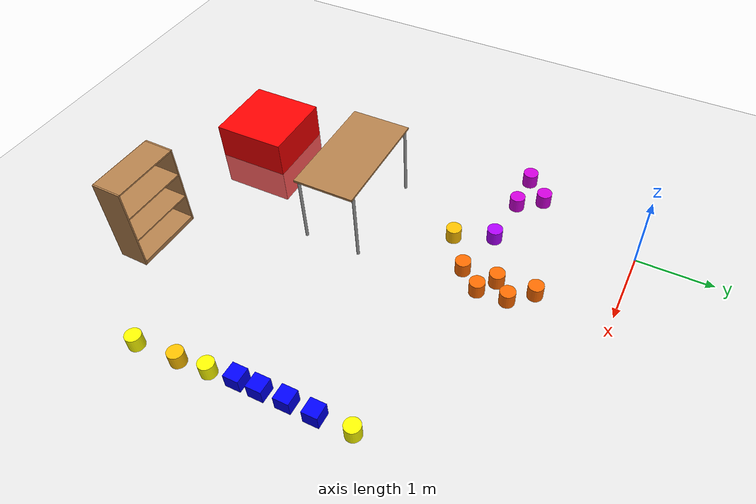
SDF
<sdf version="1.6">
 <world name="default">
  <model name="ground_plane">
   <static>1</static>
   <link name="link">
    <collision name="collision">
     <geometry><plane><normal>0 0 1</normal><size>100 100</size></plane></geometry>
     <surface>
      <contact><collide_bitmask>65535</collide_bitmask></contact>
      <friction><ode><mu>100</mu><mu2>50</mu2></ode></friction>
     </surface>
    </collision>
    <visual name="visual">
     <cast_shadows>0</cast_shadows>
     <geometry><plane><normal>0 0 1</normal><size>100 100</size></plane></geometry>
     <material>
      <script><uri>file://media/materials/scripts/gazebo.material</uri><name>Gazebo/Grey</name></script>
     </material>
    </visual>
   </link>
  </model>
  <model name="bookshelf_4">
   <static>1</static>
   <link name="link">
    <inertial><mass>1</mass></inertial>
    <collision name="back">
     <pose>0 0.005 0.6 0 -0 0</pose>
     <geometry><box><size>0.9 0.01 1.2</size></box></geometry>
    </collision>
    <visual name="visual1">
     <pose>0 0.005 0.6 0 -0 0</pose>
     <geometry><box><size>0.9 0.01 1.2</size></box></geometry>
     <material>
      <script><uri>file://media/materials/scripts/gazebo.material</uri><name>Gazebo/Wood</name></script>
     </material>
    </visual>
    <collision name="left_side">
     <pose>0.45 -0.195 0.6 0 -0 0</pose>
     <geometry><box><size>0.02 0.4 1.2</size></box></geometry>
    </collision>
    <visual name="visual2">
     <pose>0.45 -0.195 0.6 0 -0 0</pose>
     <geometry><box><size>0.02 0.4 1.2</size></box></geometry>
     <material>
      <script><uri>file://media/materials/scripts/gazebo.material</uri><name>Gazebo/Wood</name></script>
     </material>
    </visual>
    <collision name="right_side">
     <pose>-0.45 -0.195 0.6 0 -0 0</pose>
     <geometry><box><size>0.02 0.4 1.2</size></box></geometry>
    </collision>
    <visual name="visual3">
     <pose>-0.45 -0.195 0.6 0 -0 0</pose>
     <geometry><box><size>0.02 0.4 1.2</size></box></geometry>
     <material>
      <script><uri>file://media/materials/scripts/gazebo.material</uri><name>Gazebo/Wood</name></script>
     </material>
    </visual>
    <collision name="bottom">
     <pose>0 -0.195 0.03 0 -0 0</pose>
     <geometry><box><size>0.88 0.4 0.06</size></box></geometry>
    </collision>
    <visual name="visual4">
     <pose>0 -0.195 0.03 0 -0 0</pose>
     <geometry><box><size>0.88 0.4 0.06</size></box></geometry>
     <material>
      <script><uri>file://media/materials/scripts/gazebo.material</uri><name>Gazebo/Wood</name></script>
     </material>
    </visual>
    <collision name="top">
     <pose>0 -0.195 1.19 0 -0 0</pose>
     <geometry><box><size>0.88 0.4 0.02</size></box></geometry>
    </collision>
    <visual name="visual5">
     <pose>0 -0.195 1.19 0 -0 0</pose>
     <geometry><box><size>0.88 0.4 0.02</size></box></geometry>
     <material>
      <script><uri>file://media/materials/scripts/gazebo.material</uri><name>Gazebo/Wood</name></script>
     </material>
    </visual>
    <collision name="low_shelf">
     <pose>0 -0.195 0.43 0 -0 0</pose>
     <geometry><box><size>0.88 0.4 0.02</size></box></geometry>
    </collision>
    <visual name="visual6">
     <pose>0 -0.195 0.43 0 -0 0</pose>
     <geometry><box><size>0.88 0.4 0.02</size></box></geometry>
     <material>
      <script><uri>file://media/materials/scripts/gazebo.material</uri><name>Gazebo/Wood</name></script>
     </material>
    </visual>
    <collision name="high_shelf">
     <pose>0 -0.195 0.8 0 -0 0</pose>
     <geometry><box><size>0.88 0.4 0.02</size></box></geometry>
    </collision>
    <visual name="visual7">
     <pose>0 -0.195 0.8 0 -0 0</pose>
     <geometry><box><size>0.88 0.4 0.02</size></box></geometry>
     <material>
      <script><uri>file://media/materials/scripts/gazebo.material</uri><name>Gazebo/Wood</name></script>
     </material>
    </visual>
   </link>
   <pose>2.28502 -5.89967 -0 0 -0 3.11447</pose>
  </model>
  <model name="red_box_1">
   <link name="link_0">
    <inertial>
     <mass>1</mass>
     <inertia>
      <ixx>0.166667</ixx>
      <ixy>0</ixy>
      <ixz>0</ixz>
      <iyy>0.166667</iyy>
      <iyz>0</iyz>
      <izz>0.166667</izz>
     </inertia>
    </inertial>
    <visual name="visual">
     <geometry><box><size>1 1 1</size></box></geometry>
     <material>
      <lighting>1</lighting>
      <script><uri>file://media/materials/scripts/gazebo.material</uri><name>Gazebo/Grey</name></script>
      <shader type="vertex"><normal_map>__default__</normal_map></shader>
      <ambient>1 0 0 1</ambient>
      <diffuse>1 0 0 1</diffuse>
      <specular>1 0 0 1</specular>
      <emissive>0 0 0 1</emissive>
     </material>
    </visual>
    <collision name="collision">
     <geometry><box><size>1 1 1</size></box></geometry>
     <surface>
      <friction>
       <ode><mu>1</mu><mu2>1</mu2><fdir1>0 0 0</fdir1><slip1>0</slip1><slip2>0</slip2></ode>
       <torsional>
        <coefficient>1</coefficient>
        <patch_radius>0</patch_radius>
        <surface_radius>0</surface_radius>
        <use_patch_radius>1</use_patch_radius>
        <ode><slip>0</slip></ode>
       </torsional>
      </friction>
      <bounce><restitution_coefficient>0</restitution_coefficient><threshold>1e+06</threshold></bounce>
      <contact>
       <collide_without_contact>0</collide_without_contact>
       <collide_without_contact_bitmask>1</collide_without_contact_bitmask>
       <collide_bitmask>1</collide_bitmask>
       <ode>
        <soft_cfm>0</soft_cfm>
        <soft_erp>0.2</soft_erp>
        <kp>1e+13</kp>
        <kd>1</kd>
        <max_vel>0.01</max_vel>
        <min_depth>0</min_depth>
       </ode>
       <bullet>
        <split_impulse>1</split_impulse>
        <split_impulse_penetration_threshold>-0.01</split_impulse_penetration_threshold>
        <soft_cfm>0</soft_cfm>
        <soft_erp>0.2</soft_erp>
        <kp>1e+13</kp>
        <kd>1</kd>
       </bullet>
      </contact>
     </surface>
    </collision>
   </link>
   <static>1</static>
   <pose>0.07589 -5.40171 0 0 -0 0</pose>
  </model>
  <model name="cylinder_v_4">
   <link name="link_0">
    <pose>0 0 0.1 0 -0 0</pose>
    <inertial>
     <mass>1</mass>
     <inertia><ixx>0.145833</ixx><ixy>0</ixy><ixz>0</ixz><iyy>0.145833</iyy><iyz>0</iyz><izz>0.125</izz></inertia>
    </inertial>
    <visual name="visual">
     <geometry><cylinder><radius>0.1</radius><length>0.2</length></cylinder></geometry>
     <material>
      <lighting>1</lighting>
      <script><uri>file://media/materials/scripts/gazebo.material</uri><name>Gazebo/Grey</name></script>
      <ambient>0.682 0 1 1</ambient>
      <diffuse>0.682 0 1 1</diffuse>
      <specular>0 0 0 1</specular>
      <emissive>0 0 0 1</emissive>
      <shader type="vertex"><normal_map>__default__</normal_map></shader>
     </material>
    </visual>
    <collision name="collision">
     <geometry><cylinder><radius>0.1</radius><length>0.2</length></cylinder></geometry>
     <surface>
      <friction>
       <ode><mu>1</mu><mu2>1</mu2><fdir1>0 0 0</fdir1><slip1>0</slip1><slip2>0</slip2></ode>
       <torsional>
        <coefficient>1</coefficient>
        <patch_radius>0</patch_radius>
        <surface_radius>0</surface_radius>
        <use_patch_radius>1</use_patch_radius>
        <ode><slip>0</slip></ode>
       </torsional>
      </friction>
      <bounce><restitution_coefficient>0</restitution_coefficient><threshold>1e+06</threshold></bounce>
      <contact>
       <collide_without_contact>0</collide_without_contact>
       <collide_without_contact_bitmask>1</collide_without_contact_bitmask>
       <collide_bitmask>1</collide_bitmask>
       <ode>
        <soft_cfm>0</soft_cfm>
        <soft_erp>0.2</soft_erp>
        <kp>1e+13</kp>
        <kd>1</kd>
        <max_vel>0.01</max_vel>
        <min_depth>0</min_depth>
       </ode>
       <bullet>
        <split_impulse>1</split_impulse>
        <split_impulse_penetration_threshold>-0.01</split_impulse_penetration_threshold>
        <soft_cfm>0</soft_cfm>
        <soft_erp>0.2</soft_erp>
        <kp>1e+13</kp>
        <kd>1</kd>
       </bullet>
      </contact>
     </surface>
    </collision>
   </link>
   <static>1</static>
   <pose>0.441507 -1.73915 0 0 -0 0</pose>
  </model>
  <model name="cylinder_rv_0">
   <link name="link_0">
    <pose>0 0 0.1 0 -0 0</pose>
    <inertial>
     <mass>1</mass>
     <inertia><ixx>0.145833</ixx><ixy>0</ixy><ixz>0</ixz><iyy>0.145833</iyy><iyz>0</iyz><izz>0.125</izz></inertia>
    </inertial>
    <visual name="visual">
     <geometry><cylinder><radius>0.1</radius><length>0.2</length></cylinder></geometry>
     <material>
      <lighting>1</lighting>
      <script><uri>file://media/materials/scripts/gazebo.material</uri><name>Gazebo/Grey</name></script>
      <ambient>0.816 0 0.855 1</ambient>
      <diffuse>0.816 0 0.855 1</diffuse>
      <specular>0 0 0 1</specular>
      <emissive>0 0 0 1</emissive>
      <shader type="vertex"><normal_map>__default__</normal_map></shader>
     </material>
    </visual>
    <collision name="collision">
     <geometry><cylinder><radius>0.1</radius><length>0.2</length></cylinder></geometry>
     <surface>
      <friction>
       <ode><mu>1</mu><mu2>1</mu2><fdir1>0 0 0</fdir1><slip1>0</slip1><slip2>0</slip2></ode>
       <torsional>
        <coefficient>1</coefficient>
        <patch_radius>0</patch_radius>
        <surface_radius>0</surface_radius>
        <use_patch_radius>1</use_patch_radius>
        <ode><slip>0</slip></ode>
       </torsional>
      </friction>
      <bounce><restitution_coefficient>0</restitution_coefficient><threshold>1e+06</threshold></bounce>
      <contact>
       <collide_without_contact>0</collide_without_contact>
       <collide_without_contact_bitmask>1</collide_without_contact_bitmask>
       <collide_bitmask>1</collide_bitmask>
       <ode>
        <soft_cfm>0</soft_cfm>
        <soft_erp>0.2</soft_erp>
        <kp>1e+13</kp>
        <kd>1</kd>
        <max_vel>0.01</max_vel>
        <min_depth>0</min_depth>
       </ode>
       <bullet>
        <split_impulse>1</split_impulse>
        <split_impulse_penetration_threshold>-0.01</split_impulse_penetration_threshold>
        <soft_cfm>0</soft_cfm>
        <soft_erp>0.2</soft_erp>
        <kp>1e+13</kp>
        <kd>1</kd>
       </bullet>
      </contact>
     </surface>
    </collision>
   </link>
   <static>1</static>
   <pose>-0.768121 -1.69082 0 0 -0 0</pose>
  </model>
  <model name="cylinder_rv_1">
   <link name="link_0">
    <pose>0 0 0.1 0 -0 0</pose>
    <inertial>
     <mass>1</mass>
     <inertia><ixx>0.145833</ixx><ixy>0</ixy><ixz>0</ixz><iyy>0.145833</iyy><iyz>0</iyz><izz>0.125</izz></inertia>
    </inertial>
    <visual name="visual">
     <geometry><cylinder><radius>0.1</radius><length>0.2</length></cylinder></geometry>
     <material>
      <lighting>1</lighting>
      <script><uri>file://media/materials/scripts/gazebo.material</uri><name>Gazebo/Grey</name></script>
      <ambient>0.816 0 0.855 1</ambient>
      <diffuse>0.816 0 0.855 1</diffuse>
      <specular>0 0 0 1</specular>
      <emissive>0 0 0 1</emissive>
      <shader type="vertex"><normal_map>__default__</normal_map></shader>
     </material>
    </visual>
    <collision name="collision">
     <geometry><cylinder><radius>0.1</radius><length>0.2</length></cylinder></geometry>
     <surface>
      <friction>
       <ode><mu>1</mu><mu2>1</mu2><fdir1>0 0 0</fdir1><slip1>0</slip1><slip2>0</slip2></ode>
       <torsional>
        <coefficient>1</coefficient>
        <patch_radius>0</patch_radius>
        <surface_radius>0</surface_radius>
        <use_patch_radius>1</use_patch_radius>
        <ode><slip>0</slip></ode>
       </torsional>
      </friction>
      <bounce><restitution_coefficient>0</restitution_coefficient><threshold>1e+06</threshold></bounce>
      <contact>
       <collide_without_contact>0</collide_without_contact>
       <collide_without_contact_bitmask>1</collide_without_contact_bitmask>
       <collide_bitmask>1</collide_bitmask>
       <ode>
        <soft_cfm>0</soft_cfm>
        <soft_erp>0.2</soft_erp>
        <kp>1e+13</kp>
        <kd>1</kd>
        <max_vel>0.01</max_vel>
        <min_depth>0</min_depth>
       </ode>
       <bullet>
        <split_impulse>1</split_impulse>
        <split_impulse_penetration_threshold>-0.01</split_impulse_penetration_threshold>
        <soft_cfm>0</soft_cfm>
        <soft_erp>0.2</soft_erp>
        <kp>1e+13</kp>
        <kd>1</kd>
       </bullet>
      </contact>
     </surface>
    </collision>
   </link>
   <static>1</static>
   <pose>-0.466473 -1.38858 0 0 -0 0</pose>
  </model>
  <model name="cylinder_rv_2">
   <link name="link_0">
    <pose>0 0 0.1 0 -0 0</pose>
    <inertial>
     <mass>1</mass>
     <inertia><ixx>0.145833</ixx><ixy>0</ixy><ixz>0</ixz><iyy>0.145833</iyy><iyz>0</iyz><izz>0.125</izz></inertia>
    </inertial>
    <visual name="visual">
     <geometry><cylinder><radius>0.1</radius><length>0.2</length></cylinder></geometry>
     <material>
      <lighting>1</lighting>
      <script><uri>file://media/materials/scripts/gazebo.material</uri><name>Gazebo/Grey</name></script>
      <ambient>0.816 0 0.855 1</ambient>
      <diffuse>0.816 0 0.855 1</diffuse>
      <specular>0 0 0 1</specular>
      <emissive>0 0 0 1</emissive>
      <shader type="vertex"><normal_map>__default__</normal_map></shader>
     </material>
    </visual>
    <collision name="collision">
     <geometry><cylinder><radius>0.1</radius><length>0.2</length></cylinder></geometry>
     <surface>
      <friction>
       <ode><mu>1</mu><mu2>1</mu2><fdir1>0 0 0</fdir1><slip1>0</slip1><slip2>0</slip2></ode>
       <torsional>
        <coefficient>1</coefficient>
        <patch_radius>0</patch_radius>
        <surface_radius>0</surface_radius>
        <use_patch_radius>1</use_patch_radius>
        <ode><slip>0</slip></ode>
       </torsional>
      </friction>
      <bounce><restitution_coefficient>0</restitution_coefficient><threshold>1e+06</threshold></bounce>
      <contact>
       <collide_without_contact>0</collide_without_contact>
       <collide_without_contact_bitmask>1</collide_without_contact_bitmask>
       <collide_bitmask>1</collide_bitmask>
       <ode>
        <soft_cfm>0</soft_cfm>
        <soft_erp>0.2</soft_erp>
        <kp>1e+13</kp>
        <kd>1</kd>
        <max_vel>0.01</max_vel>
        <min_depth>0</min_depth>
       </ode>
       <bullet>
        <split_impulse>1</split_impulse>
        <split_impulse_penetration_threshold>-0.01</split_impulse_penetration_threshold>
        <soft_cfm>0</soft_cfm>
        <soft_erp>0.2</soft_erp>
        <kp>1e+13</kp>
        <kd>1</kd>
       </bullet>
      </contact>
     </surface>
    </collision>
   </link>
   <static>1</static>
   <pose>-0.248047 -1.69027 0 0 -0 0</pose>
  </model>
  <model name="cylinder_yo_2">
   <link name="link_0">
    <pose>0 0 0.1 0 -0 0</pose>
    <inertial>
     <mass>1</mass>
     <inertia><ixx>0.145833</ixx><ixy>0</ixy><ixz>0</ixz><iyy>0.145833</iyy><iyz>0</iyz><izz>0.125</izz></inertia>
    </inertial>
    <visual name="visual">
     <geometry><cylinder><radius>0.1</radius><length>0.2</length></cylinder></geometry>
     <material>
      <lighting>1</lighting>
      <script><uri>file://media/materials/scripts/gazebo.material</uri><name>Gazebo/Grey</name></script>
      <ambient>1 0.749 0 1</ambient>
      <diffuse>1 0.749 0 1</diffuse>
      <specular>0 0 0 1</specular>
      <emissive>0 0 0 1</emissive>
      <shader type="vertex"><normal_map>__default__</normal_map></shader>
     </material>
    </visual>
    <collision name="collision">
     <geometry><cylinder><radius>0.1</radius><length>0.2</length></cylinder></geometry>
     <surface>
      <friction>
       <ode><mu>1</mu><mu2>1</mu2><fdir1>0 0 0</fdir1><slip1>0</slip1><slip2>0</slip2></ode>
       <torsional>
        <coefficient>1</coefficient>
        <patch_radius>0</patch_radius>
        <surface_radius>0</surface_radius>
        <use_patch_radius>1</use_patch_radius>
        <ode><slip>0</slip></ode>
       </torsional>
      </friction>
      <bounce><restitution_coefficient>0</restitution_coefficient><threshold>1e+06</threshold></bounce>
      <contact>
       <collide_without_contact>0</collide_without_contact>
       <collide_without_contact_bitmask>1</collide_without_contact_bitmask>
       <collide_bitmask>1</collide_bitmask>
       <ode>
        <soft_cfm>0</soft_cfm>
        <soft_erp>0.2</soft_erp>
        <kp>1e+13</kp>
        <kd>1</kd>
        <max_vel>0.01</max_vel>
        <min_depth>0</min_depth>
       </ode>
       <bullet>
        <split_impulse>1</split_impulse>
        <split_impulse_penetration_threshold>-0.01</split_impulse_penetration_threshold>
        <soft_cfm>0</soft_cfm>
        <soft_erp>0.2</soft_erp>
        <kp>1e+13</kp>
        <kd>1</kd>
       </bullet>
      </contact>
     </surface>
    </collision>
   </link>
   <static>1</static>
   <pose>0.648954 -2.22504 0 0 -0 0</pose>
  </model>
  <model name="cylinder_or_7">
   <link name="link_0">
    <pose>0 0 0.1 0 -0 0</pose>
    <inertial>
     <mass>1</mass>
     <inertia><ixx>0.145833</ixx><ixy>0</ixy><ixz>0</ixz><iyy>0.145833</iyy><iyz>0</iyz><izz>0.125</izz></inertia>
    </inertial>
    <visual name="visual">
     <geometry><cylinder><radius>0.1</radius><length>0.2</length></cylinder></geometry>
     <material>
      <lighting>1</lighting>
      <script><uri>file://media/materials/scripts/gazebo.material</uri><name>Gazebo/Grey</name></script>
      <ambient>1 0.416 0 1</ambient>
      <diffuse>1 0.416 0 1</diffuse>
      <specular>0 0 0 1</specular>
      <emissive>0 0 0 1</emissive>
      <shader type="vertex"><normal_map>__default__</normal_map></shader>
     </material>
    </visual>
    <collision name="collision">
     <geometry><cylinder><radius>0.1</radius><length>0.2</length></cylinder></geometry>
     <surface>
      <friction>
       <ode><mu>1</mu><mu2>1</mu2><fdir1>0 0 0</fdir1><slip1>0</slip1><slip2>0</slip2></ode>
       <torsional>
        <coefficient>1</coefficient>
        <patch_radius>0</patch_radius>
        <surface_radius>0</surface_radius>
        <use_patch_radius>1</use_patch_radius>
        <ode><slip>0</slip></ode>
       </torsional>
      </friction>
      <bounce><restitution_coefficient>0</restitution_coefficient><threshold>1e+06</threshold></bounce>
      <contact>
       <collide_without_contact>0</collide_without_contact>
       <collide_without_contact_bitmask>1</collide_without_contact_bitmask>
       <collide_bitmask>1</collide_bitmask>
       <ode>
        <soft_cfm>0</soft_cfm>
        <soft_erp>0.2</soft_erp>
        <kp>1e+13</kp>
        <kd>1</kd>
        <max_vel>0.01</max_vel>
        <min_depth>0</min_depth>
       </ode>
       <bullet>
        <split_impulse>1</split_impulse>
        <split_impulse_penetration_threshold>-0.01</split_impulse_penetration_threshold>
        <soft_cfm>0</soft_cfm>
        <soft_erp>0.2</soft_erp>
        <kp>1e+13</kp>
        <kd>1</kd>
       </bullet>
      </contact>
     </surface>
    </collision>
   </link>
   <static>1</static>
   <pose>1.11018 -1.89573 0 0 -0 0</pose>
  </model>
  <model name="cylinder_or_8">
   <link name="link_0">
    <pose>0 0 0.1 0 -0 0</pose>
    <inertial>
     <mass>1</mass>
     <inertia><ixx>0.145833</ixx><ixy>0</ixy><ixz>0</ixz><iyy>0.145833</iyy><iyz>0</iyz><izz>0.125</izz></inertia>
    </inertial>
    <visual name="visual">
     <geometry><cylinder><radius>0.1</radius><length>0.2</length></cylinder></geometry>
     <material>
      <lighting>1</lighting>
      <script><uri>file://media/materials/scripts/gazebo.material</uri><name>Gazebo/Grey</name></script>
      <ambient>1 0.416 0 1</ambient>
      <diffuse>1 0.416 0 1</diffuse>
      <specular>0 0 0 1</specular>
      <emissive>0 0 0 1</emissive>
      <shader type="vertex"><normal_map>__default__</normal_map></shader>
     </material>
    </visual>
    <collision name="collision">
     <geometry><cylinder><radius>0.1</radius><length>0.2</length></cylinder></geometry>
     <surface>
      <friction>
       <ode><mu>1</mu><mu2>1</mu2><fdir1>0 0 0</fdir1><slip1>0</slip1><slip2>0</slip2></ode>
       <torsional>
        <coefficient>1</coefficient>
        <patch_radius>0</patch_radius>
        <surface_radius>0</surface_radius>
        <use_patch_radius>1</use_patch_radius>
        <ode><slip>0</slip></ode>
       </torsional>
      </friction>
      <bounce><restitution_coefficient>0</restitution_coefficient><threshold>1e+06</threshold></bounce>
      <contact>
       <collide_without_contact>0</collide_without_contact>
       <collide_without_contact_bitmask>1</collide_without_contact_bitmask>
       <collide_bitmask>1</collide_bitmask>
       <ode>
        <soft_cfm>0</soft_cfm>
        <soft_erp>0.2</soft_erp>
        <kp>1e+13</kp>
        <kd>1</kd>
        <max_vel>0.01</max_vel>
        <min_depth>0</min_depth>
       </ode>
       <bullet>
        <split_impulse>1</split_impulse>
        <split_impulse_penetration_threshold>-0.01</split_impulse_penetration_threshold>
        <soft_cfm>0</soft_cfm>
        <soft_erp>0.2</soft_erp>
        <kp>1e+13</kp>
        <kd>1</kd>
       </bullet>
      </contact>
     </surface>
    </collision>
   </link>
   <static>1</static>
   <pose>1.11193 -1.44177 0 0 -0 0</pose>
  </model>
  <model name="cylinder_or_9">
   <link name="link_0">
    <pose>0 0 0.1 0 -0 0</pose>
    <inertial>
     <mass>1</mass>
     <inertia><ixx>0.145833</ixx><ixy>0</ixy><ixz>0</ixz><iyy>0.145833</iyy><iyz>0</iyz><izz>0.125</izz></inertia>
    </inertial>
    <visual name="visual">
     <geometry><cylinder><radius>0.1</radius><length>0.2</length></cylinder></geometry>
     <material>
      <lighting>1</lighting>
      <script><uri>file://media/materials/scripts/gazebo.material</uri><name>Gazebo/Grey</name></script>
      <ambient>1 0.416 0 1</ambient>
      <diffuse>1 0.416 0 1</diffuse>
      <specular>0 0 0 1</specular>
      <emissive>0 0 0 1</emissive>
      <shader type="vertex"><normal_map>__default__</normal_map></shader>
     </material>
    </visual>
    <collision name="collision">
     <geometry><cylinder><radius>0.1</radius><length>0.2</length></cylinder></geometry>
     <surface>
      <friction>
       <ode><mu>1</mu><mu2>1</mu2><fdir1>0 0 0</fdir1><slip1>0</slip1><slip2>0</slip2></ode>
       <torsional>
        <coefficient>1</coefficient>
        <patch_radius>0</patch_radius>
        <surface_radius>0</surface_radius>
        <use_patch_radius>1</use_patch_radius>
        <ode><slip>0</slip></ode>
       </torsional>
      </friction>
      <bounce><restitution_coefficient>0</restitution_coefficient><threshold>1e+06</threshold></bounce>
      <contact>
       <collide_without_contact>0</collide_without_contact>
       <collide_without_contact_bitmask>1</collide_without_contact_bitmask>
       <collide_bitmask>1</collide_bitmask>
       <ode>
        <soft_cfm>0</soft_cfm>
        <soft_erp>0.2</soft_erp>
        <kp>1e+13</kp>
        <kd>1</kd>
        <max_vel>0.01</max_vel>
        <min_depth>0</min_depth>
       </ode>
       <bullet>
        <split_impulse>1</split_impulse>
        <split_impulse_penetration_threshold>-0.01</split_impulse_penetration_threshold>
        <soft_cfm>0</soft_cfm>
        <soft_erp>0.2</soft_erp>
        <kp>1e+13</kp>
        <kd>1</kd>
       </bullet>
      </contact>
     </surface>
    </collision>
   </link>
   <static>1</static>
   <pose>1.08938 -0.950591 0 0 -0 0</pose>
  </model>
  <model name="cylinder_or_10">
   <link name="link_0">
    <pose>0 0 0.1 0 -0 0</pose>
    <inertial>
     <mass>1</mass>
     <inertia><ixx>0.145833</ixx><ixy>0</ixy><ixz>0</ixz><iyy>0.145833</iyy><iyz>0</iyz><izz>0.125</izz></inertia>
    </inertial>
    <visual name="visual">
     <geometry><cylinder><radius>0.1</radius><length>0.2</length></cylinder></geometry>
     <material>
      <lighting>1</lighting>
      <script><uri>file://media/materials/scripts/gazebo.material</uri><name>Gazebo/Grey</name></script>
      <ambient>1 0.416 0 1</ambient>
      <diffuse>1 0.416 0 1</diffuse>
      <specular>0 0 0 1</specular>
      <emissive>0 0 0 1</emissive>
      <shader type="vertex"><normal_map>__default__</normal_map></shader>
     </material>
    </visual>
    <collision name="collision">
     <geometry><cylinder><radius>0.1</radius><length>0.2</length></cylinder></geometry>
     <surface>
      <friction>
       <ode><mu>1</mu><mu2>1</mu2><fdir1>0 0 0</fdir1><slip1>0</slip1><slip2>0</slip2></ode>
       <torsional>
        <coefficient>1</coefficient>
        <patch_radius>0</patch_radius>
        <surface_radius>0</surface_radius>
        <use_patch_radius>1</use_patch_radius>
        <ode><slip>0</slip></ode>
       </torsional>
      </friction>
      <bounce><restitution_coefficient>0</restitution_coefficient><threshold>1e+06</threshold></bounce>
      <contact>
       <collide_without_contact>0</collide_without_contact>
       <collide_without_contact_bitmask>1</collide_without_contact_bitmask>
       <collide_bitmask>1</collide_bitmask>
       <ode>
        <soft_cfm>0</soft_cfm>
        <soft_erp>0.2</soft_erp>
        <kp>1e+13</kp>
        <kd>1</kd>
        <max_vel>0.01</max_vel>
        <min_depth>0</min_depth>
       </ode>
       <bullet>
        <split_impulse>1</split_impulse>
        <split_impulse_penetration_threshold>-0.01</split_impulse_penetration_threshold>
        <soft_cfm>0</soft_cfm>
        <soft_erp>0.2</soft_erp>
        <kp>1e+13</kp>
        <kd>1</kd>
       </bullet>
      </contact>
     </surface>
    </collision>
   </link>
   <static>1</static>
   <pose>1.34403 -1.61004 0 0 -0 0</pose>
  </model>
  <model name="cylinder_or_11">
   <link name="link_0">
    <pose>0 0 0.1 0 -0 0</pose>
    <inertial>
     <mass>1</mass>
     <inertia><ixx>0.145833</ixx><ixy>0</ixy><ixz>0</ixz><iyy>0.145833</iyy><iyz>0</iyz><izz>0.125</izz></inertia>
    </inertial>
    <visual name="visual">
     <geometry><cylinder><radius>0.1</radius><length>0.2</length></cylinder></geometry>
     <material>
      <lighting>1</lighting>
      <script><uri>file://media/materials/scripts/gazebo.material</uri><name>Gazebo/Grey</name></script>
      <ambient>1 0.416 0 1</ambient>
      <diffuse>1 0.416 0 1</diffuse>
      <specular>0 0 0 1</specular>
      <emissive>0 0 0 1</emissive>
      <shader type="vertex"><normal_map>__default__</normal_map></shader>
     </material>
    </visual>
    <collision name="collision">
     <geometry><cylinder><radius>0.1</radius><length>0.2</length></cylinder></geometry>
     <surface>
      <friction>
       <ode><mu>1</mu><mu2>1</mu2><fdir1>0 0 0</fdir1><slip1>0</slip1><slip2>0</slip2></ode>
       <torsional>
        <coefficient>1</coefficient>
        <patch_radius>0</patch_radius>
        <surface_radius>0</surface_radius>
        <use_patch_radius>1</use_patch_radius>
        <ode><slip>0</slip></ode>
       </torsional>
      </friction>
      <bounce><restitution_coefficient>0</restitution_coefficient><threshold>1e+06</threshold></bounce>
      <contact>
       <collide_without_contact>0</collide_without_contact>
       <collide_without_contact_bitmask>1</collide_without_contact_bitmask>
       <collide_bitmask>1</collide_bitmask>
       <ode>
        <soft_cfm>0</soft_cfm>
        <soft_erp>0.2</soft_erp>
        <kp>1e+13</kp>
        <kd>1</kd>
        <max_vel>0.01</max_vel>
        <min_depth>0</min_depth>
       </ode>
       <bullet>
        <split_impulse>1</split_impulse>
        <split_impulse_penetration_threshold>-0.01</split_impulse_penetration_threshold>
        <soft_cfm>0</soft_cfm>
        <soft_erp>0.2</soft_erp>
        <kp>1e+13</kp>
        <kd>1</kd>
       </bullet>
      </contact>
     </surface>
    </collision>
   </link>
   <static>1</static>
   <pose>1.32627 -1.22338 0 0 -0 0</pose>
  </model>
  <model name="cylinder_y_8">
   <link name="link_0">
    <pose>0 0 0.1 0 -0 0</pose>
    <inertial>
     <mass>1</mass>
     <inertia><ixx>0.145833</ixx><ixy>0</ixy><ixz>0</ixz><iyy>0.145833</iyy><iyz>0</iyz><izz>0.125</izz></inertia>
    </inertial>
    <visual name="visual">
     <geometry><cylinder><radius>0.1</radius><length>0.2</length></cylinder></geometry>
     <material>
      <lighting>1</lighting>
      <script><uri>file://media/materials/scripts/gazebo.material</uri><name>Gazebo/Grey</name></script>
      <ambient>1 1 0 1</ambient>
      <diffuse>1 1 0 1</diffuse>
      <specular>0 0 0 1</specular>
      <emissive>0 0 0 1</emissive>
      <shader type="vertex"><normal_map>__default__</normal_map></shader>
     </material>
    </visual>
    <collision name="collision">
     <geometry><cylinder><radius>0.1</radius><length>0.2</length></cylinder></geometry>
     <surface>
      <friction>
       <ode><mu>1</mu><mu2>1</mu2><fdir1>0 0 0</fdir1><slip1>0</slip1><slip2>0</slip2></ode>
       <torsional>
        <coefficient>1</coefficient>
        <patch_radius>0</patch_radius>
        <surface_radius>0</surface_radius>
        <use_patch_radius>1</use_patch_radius>
        <ode><slip>0</slip></ode>
       </torsional>
      </friction>
      <bounce><restitution_coefficient>0</restitution_coefficient><threshold>1e+06</threshold></bounce>
      <contact>
       <collide_without_contact>0</collide_without_contact>
       <collide_without_contact_bitmask>1</collide_without_contact_bitmask>
       <collide_bitmask>1</collide_bitmask>
       <ode>
        <soft_cfm>0</soft_cfm>
        <soft_erp>0.2</soft_erp>
        <kp>1e+13</kp>
        <kd>1</kd>
        <max_vel>0.01</max_vel>
        <min_depth>0</min_depth>
       </ode>
       <bullet>
        <split_impulse>1</split_impulse>
        <split_impulse_penetration_threshold>-0.01</split_impulse_penetration_threshold>
        <soft_cfm>0</soft_cfm>
        <soft_erp>0.2</soft_erp>
        <kp>1e+13</kp>
        <kd>1</kd>
       </bullet>
      </contact>
     </surface>
    </collision>
   </link>
   <static>1</static>
   <pose>3.69471 -3.84302 0 0 -0 0</pose>
  </model>
  <model name="cylinder_y_9">
   <link name="link_0">
    <pose>0 0 0.1 0 -0 0</pose>
    <inertial>
     <mass>1</mass>
     <inertia><ixx>0.145833</ixx><ixy>0</ixy><ixz>0</ixz><iyy>0.145833</iyy><iyz>0</iyz><izz>0.125</izz></inertia>
    </inertial>
    <visual name="visual">
     <geometry><cylinder><radius>0.1</radius><length>0.2</length></cylinder></geometry>
     <material>
      <lighting>1</lighting>
      <script><uri>file://media/materials/scripts/gazebo.material</uri><name>Gazebo/Grey</name></script>
      <ambient>1 1 0 1</ambient>
      <diffuse>1 1 0 1</diffuse>
      <specular>0 0 0 1</specular>
      <emissive>0 0 0 1</emissive>
      <shader type="vertex"><normal_map>__default__</normal_map></shader>
     </material>
    </visual>
    <collision name="collision">
     <geometry><cylinder><radius>0.1</radius><length>0.2</length></cylinder></geometry>
     <surface>
      <friction>
       <ode><mu>1</mu><mu2>1</mu2><fdir1>0 0 0</fdir1><slip1>0</slip1><slip2>0</slip2></ode>
       <torsional>
        <coefficient>1</coefficient>
        <patch_radius>0</patch_radius>
        <surface_radius>0</surface_radius>
        <use_patch_radius>1</use_patch_radius>
        <ode><slip>0</slip></ode>
       </torsional>
      </friction>
      <bounce><restitution_coefficient>0</restitution_coefficient><threshold>1e+06</threshold></bounce>
      <contact>
       <collide_without_contact>0</collide_without_contact>
       <collide_without_contact_bitmask>1</collide_without_contact_bitmask>
       <collide_bitmask>1</collide_bitmask>
       <ode>
        <soft_cfm>0</soft_cfm>
        <soft_erp>0.2</soft_erp>
        <kp>1e+13</kp>
        <kd>1</kd>
        <max_vel>0.01</max_vel>
        <min_depth>0</min_depth>
       </ode>
       <bullet>
        <split_impulse>1</split_impulse>
        <split_impulse_penetration_threshold>-0.01</split_impulse_penetration_threshold>
        <soft_cfm>0</soft_cfm>
        <soft_erp>0.2</soft_erp>
        <kp>1e+13</kp>
        <kd>1</kd>
       </bullet>
      </contact>
     </surface>
    </collision>
   </link>
   <static>1</static>
   <pose>3.65236 -2.02744 0 0 -0 0</pose>
  </model>
  <model name="cylinder_y_10">
   <link name="link_0">
    <pose>0 0 0.1 0 -0 0</pose>
    <inertial>
     <mass>1</mass>
     <inertia><ixx>0.145833</ixx><ixy>0</ixy><ixz>0</ixz><iyy>0.145833</iyy><iyz>0</iyz><izz>0.125</izz></inertia>
    </inertial>
    <visual name="visual">
     <geometry><cylinder><radius>0.1</radius><length>0.2</length></cylinder></geometry>
     <material>
      <lighting>1</lighting>
      <script><uri>file://media/materials/scripts/gazebo.material</uri><name>Gazebo/Grey</name></script>
      <ambient>1 1 0 1</ambient>
      <diffuse>1 1 0 1</diffuse>
      <specular>0 0 0 1</specular>
      <emissive>0 0 0 1</emissive>
      <shader type="vertex"><normal_map>__default__</normal_map></shader>
     </material>
    </visual>
    <collision name="collision">
     <geometry><cylinder><radius>0.1</radius><length>0.2</length></cylinder></geometry>
     <surface>
      <friction>
       <ode><mu>1</mu><mu2>1</mu2><fdir1>0 0 0</fdir1><slip1>0</slip1><slip2>0</slip2></ode>
       <torsional>
        <coefficient>1</coefficient>
        <patch_radius>0</patch_radius>
        <surface_radius>0</surface_radius>
        <use_patch_radius>1</use_patch_radius>
        <ode><slip>0</slip></ode>
       </torsional>
      </friction>
      <bounce><restitution_coefficient>0</restitution_coefficient><threshold>1e+06</threshold></bounce>
      <contact>
       <collide_without_contact>0</collide_without_contact>
       <collide_without_contact_bitmask>1</collide_without_contact_bitmask>
       <collide_bitmask>1</collide_bitmask>
       <ode>
        <soft_cfm>0</soft_cfm>
        <soft_erp>0.2</soft_erp>
        <kp>1e+13</kp>
        <kd>1</kd>
        <max_vel>0.01</max_vel>
        <min_depth>0</min_depth>
       </ode>
       <bullet>
        <split_impulse>1</split_impulse>
        <split_impulse_penetration_threshold>-0.01</split_impulse_penetration_threshold>
        <soft_cfm>0</soft_cfm>
        <soft_erp>0.2</soft_erp>
        <kp>1e+13</kp>
        <kd>1</kd>
       </bullet>
      </contact>
     </surface>
    </collision>
   </link>
   <static>1</static>
   <pose>3.75307 -4.81182 0 0 -0 0</pose>
  </model>
  <model name="cylinder_yo_7">
   <link name="link_0">
    <pose>0 0 0.1 0 -0 0</pose>
    <inertial>
     <mass>1</mass>
     <inertia><ixx>0.145833</ixx><ixy>0</ixy><ixz>0</ixz><iyy>0.145833</iyy><iyz>0</iyz><izz>0.125</izz></inertia>
    </inertial>
    <visual name="visual">
     <geometry><cylinder><radius>0.1</radius><length>0.2</length></cylinder></geometry>
     <material>
      <lighting>1</lighting>
      <script><uri>file://media/materials/scripts/gazebo.material</uri><name>Gazebo/Grey</name></script>
      <ambient>1 0.749 0 1</ambient>
      <diffuse>1 0.749 0 1</diffuse>
      <specular>0 0 0 1</specular>
      <emissive>0 0 0 1</emissive>
      <shader type="vertex"><normal_map>__default__</normal_map></shader>
     </material>
    </visual>
    <collision name="collision">
     <geometry><cylinder><radius>0.1</radius><length>0.2</length></cylinder></geometry>
     <surface>
      <friction>
       <ode><mu>1</mu><mu2>1</mu2><fdir1>0 0 0</fdir1><slip1>0</slip1><slip2>0</slip2></ode>
       <torsional>
        <coefficient>1</coefficient>
        <patch_radius>0</patch_radius>
        <surface_radius>0</surface_radius>
        <use_patch_radius>1</use_patch_radius>
        <ode><slip>0</slip></ode>
       </torsional>
      </friction>
      <bounce><restitution_coefficient>0</restitution_coefficient><threshold>1e+06</threshold></bounce>
      <contact>
       <collide_without_contact>0</collide_without_contact>
       <collide_without_contact_bitmask>1</collide_without_contact_bitmask>
       <collide_bitmask>1</collide_bitmask>
       <ode>
        <soft_cfm>0</soft_cfm>
        <soft_erp>0.2</soft_erp>
        <kp>1e+13</kp>
        <kd>1</kd>
        <max_vel>0.01</max_vel>
        <min_depth>0</min_depth>
       </ode>
       <bullet>
        <split_impulse>1</split_impulse>
        <split_impulse_penetration_threshold>-0.01</split_impulse_penetration_threshold>
        <soft_cfm>0</soft_cfm>
        <soft_erp>0.2</soft_erp>
        <kp>1e+13</kp>
        <kd>1</kd>
       </bullet>
      </contact>
     </surface>
    </collision>
   </link>
   <static>1</static>
   <pose>3.72667 -4.23821 0 0 -0 0</pose>
  </model>
  <model name="cube_b_0">
   <link name="link_2">
    <pose>0 0 0.1 0 -0 0</pose>
    <inertial>
     <mass>1</mass>
     <inertia>
      <ixx>0.166667</ixx>
      <ixy>0</ixy>
      <ixz>0</ixz>
      <iyy>0.166667</iyy>
      <iyz>0</iyz>
      <izz>0.166667</izz>
     </inertia>
    </inertial>
    <visual name="visual">
     <geometry><box><size>0.2 0.2 0.2</size></box></geometry>
     <material>
      <lighting>1</lighting>
      <script><uri>file://media/materials/scripts/gazebo.material</uri><name>Gazebo/Grey</name></script>
      <ambient>0 0 1 1</ambient>
      <diffuse>0 0 1 1</diffuse>
      <specular>0 0 0 1</specular>
      <emissive>0 0 0 1</emissive>
      <shader type="vertex"><normal_map>__default__</normal_map></shader>
     </material>
    </visual>
    <collision name="collision">
     <geometry><box><size>0.2 0.2 0.2</size></box></geometry>
     <surface>
      <friction>
       <ode><mu>1</mu><mu2>1</mu2><fdir1>0 0 0</fdir1><slip1>0</slip1><slip2>0</slip2></ode>
       <torsional>
        <coefficient>1</coefficient>
        <patch_radius>0</patch_radius>
        <surface_radius>0</surface_radius>
        <use_patch_radius>1</use_patch_radius>
        <ode><slip>0</slip></ode>
       </torsional>
      </friction>
      <bounce><restitution_coefficient>0</restitution_coefficient><threshold>1e+06</threshold></bounce>
      <contact>
       <collide_without_contact>0</collide_without_contact>
       <collide_without_contact_bitmask>1</collide_without_contact_bitmask>
       <collide_bitmask>1</collide_bitmask>
       <ode>
        <soft_cfm>0</soft_cfm>
        <soft_erp>0.2</soft_erp>
        <kp>1e+13</kp>
        <kd>1</kd>
        <max_vel>0.01</max_vel>
        <min_depth>0</min_depth>
       </ode>
       <bullet>
        <split_impulse>1</split_impulse>
        <split_impulse_penetration_threshold>-0.01</split_impulse_penetration_threshold>
        <soft_cfm>0</soft_cfm>
        <soft_erp>0.2</soft_erp>
        <kp>1e+13</kp>
        <kd>1</kd>
       </bullet>
      </contact>
     </surface>
    </collision>
   </link>
   <static>1</static>
   <pose>3.65625 -2.48637 0 0 -0 0</pose>
  </model>
  <model name="cube_b_1">
   <link name="link_2">
    <pose>0 0 0.1 0 -0 0</pose>
    <inertial>
     <mass>1</mass>
     <inertia>
      <ixx>0.166667</ixx>
      <ixy>0</ixy>
      <ixz>0</ixz>
      <iyy>0.166667</iyy>
      <iyz>0</iyz>
      <izz>0.166667</izz>
     </inertia>
    </inertial>
    <visual name="visual">
     <geometry><box><size>0.2 0.2 0.2</size></box></geometry>
     <material>
      <lighting>1</lighting>
      <script><uri>file://media/materials/scripts/gazebo.material</uri><name>Gazebo/Grey</name></script>
      <ambient>0 0 1 1</ambient>
      <diffuse>0 0 1 1</diffuse>
      <specular>0 0 0 1</specular>
      <emissive>0 0 0 1</emissive>
      <shader type="vertex"><normal_map>__default__</normal_map></shader>
     </material>
    </visual>
    <collision name="collision">
     <geometry><box><size>0.2 0.2 0.2</size></box></geometry>
     <surface>
      <friction>
       <ode><mu>1</mu><mu2>1</mu2><fdir1>0 0 0</fdir1><slip1>0</slip1><slip2>0</slip2></ode>
       <torsional>
        <coefficient>1</coefficient>
        <patch_radius>0</patch_radius>
        <surface_radius>0</surface_radius>
        <use_patch_radius>1</use_patch_radius>
        <ode><slip>0</slip></ode>
       </torsional>
      </friction>
      <bounce><restitution_coefficient>0</restitution_coefficient><threshold>1e+06</threshold></bounce>
      <contact>
       <collide_without_contact>0</collide_without_contact>
       <collide_without_contact_bitmask>1</collide_without_contact_bitmask>
       <collide_bitmask>1</collide_bitmask>
       <ode>
        <soft_cfm>0</soft_cfm>
        <soft_erp>0.2</soft_erp>
        <kp>1e+13</kp>
        <kd>1</kd>
        <max_vel>0.01</max_vel>
        <min_depth>0</min_depth>
       </ode>
       <bullet>
        <split_impulse>1</split_impulse>
        <split_impulse_penetration_threshold>-0.01</split_impulse_penetration_threshold>
        <soft_cfm>0</soft_cfm>
        <soft_erp>0.2</soft_erp>
        <kp>1e+13</kp>
        <kd>1</kd>
       </bullet>
      </contact>
     </surface>
    </collision>
   </link>
   <static>1</static>
   <pose>3.64695 -2.84451 0 0 -0 0</pose>
  </model>
  <model name="cube_b_2">
   <link name="link_2">
    <pose>0 0 0.1 0 -0 0</pose>
    <inertial>
     <mass>1</mass>
     <inertia>
      <ixx>0.166667</ixx>
      <ixy>0</ixy>
      <ixz>0</ixz>
      <iyy>0.166667</iyy>
      <iyz>0</iyz>
      <izz>0.166667</izz>
     </inertia>
    </inertial>
    <visual name="visual">
     <geometry><box><size>0.2 0.2 0.2</size></box></geometry>
     <material>
      <lighting>1</lighting>
      <script><uri>file://media/materials/scripts/gazebo.material</uri><name>Gazebo/Grey</name></script>
      <ambient>0 0 1 1</ambient>
      <diffuse>0 0 1 1</diffuse>
      <specular>0 0 0 1</specular>
      <emissive>0 0 0 1</emissive>
      <shader type="vertex"><normal_map>__default__</normal_map></shader>
     </material>
    </visual>
    <collision name="collision">
     <geometry><box><size>0.2 0.2 0.2</size></box></geometry>
     <surface>
      <friction>
       <ode><mu>1</mu><mu2>1</mu2><fdir1>0 0 0</fdir1><slip1>0</slip1><slip2>0</slip2></ode>
       <torsional>
        <coefficient>1</coefficient>
        <patch_radius>0</patch_radius>
        <surface_radius>0</surface_radius>
        <use_patch_radius>1</use_patch_radius>
        <ode><slip>0</slip></ode>
       </torsional>
      </friction>
      <bounce><restitution_coefficient>0</restitution_coefficient><threshold>1e+06</threshold></bounce>
      <contact>
       <collide_without_contact>0</collide_without_contact>
       <collide_without_contact_bitmask>1</collide_without_contact_bitmask>
       <collide_bitmask>1</collide_bitmask>
       <ode>
        <soft_cfm>0</soft_cfm>
        <soft_erp>0.2</soft_erp>
        <kp>1e+13</kp>
        <kd>1</kd>
        <max_vel>0.01</max_vel>
        <min_depth>0</min_depth>
       </ode>
       <bullet>
        <split_impulse>1</split_impulse>
        <split_impulse_penetration_threshold>-0.01</split_impulse_penetration_threshold>
        <soft_cfm>0</soft_cfm>
        <soft_erp>0.2</soft_erp>
        <kp>1e+13</kp>
        <kd>1</kd>
       </bullet>
      </contact>
     </surface>
    </collision>
   </link>
   <static>1</static>
   <pose>3.65454 -3.18655 0 0 -0 0</pose>
  </model>
  <model name="cube_b_3">
   <link name="link_2">
    <pose>0 0 0.1 0 -0 0</pose>
    <inertial>
     <mass>1</mass>
     <inertia>
      <ixx>0.166667</ixx>
      <ixy>0</ixy>
      <ixz>0</ixz>
      <iyy>0.166667</iyy>
      <iyz>0</iyz>
      <izz>0.166667</izz>
     </inertia>
    </inertial>
    <visual name="visual">
     <geometry><box><size>0.2 0.2 0.2</size></box></geometry>
     <material>
      <lighting>1</lighting>
      <script><uri>file://media/materials/scripts/gazebo.material</uri><name>Gazebo/Grey</name></script>
      <ambient>0 0 1 1</ambient>
      <diffuse>0 0 1 1</diffuse>
      <specular>0 0 0 1</specular>
      <emissive>0 0 0 1</emissive>
      <shader type="vertex"><normal_map>__default__</normal_map></shader>
     </material>
    </visual>
    <collision name="collision">
     <geometry><box><size>0.2 0.2 0.2</size></box></geometry>
     <surface>
      <friction>
       <ode><mu>1</mu><mu2>1</mu2><fdir1>0 0 0</fdir1><slip1>0</slip1><slip2>0</slip2></ode>
       <torsional>
        <coefficient>1</coefficient>
        <patch_radius>0</patch_radius>
        <surface_radius>0</surface_radius>
        <use_patch_radius>1</use_patch_radius>
        <ode><slip>0</slip></ode>
       </torsional>
      </friction>
      <bounce><restitution_coefficient>0</restitution_coefficient><threshold>1e+06</threshold></bounce>
      <contact>
       <collide_without_contact>0</collide_without_contact>
       <collide_without_contact_bitmask>1</collide_without_contact_bitmask>
       <collide_bitmask>1</collide_bitmask>
       <ode>
        <soft_cfm>0</soft_cfm>
        <soft_erp>0.2</soft_erp>
        <kp>1e+13</kp>
        <kd>1</kd>
        <max_vel>0.01</max_vel>
        <min_depth>0</min_depth>
       </ode>
       <bullet>
        <split_impulse>1</split_impulse>
        <split_impulse_penetration_threshold>-0.01</split_impulse_penetration_threshold>
        <soft_cfm>0</soft_cfm>
        <soft_erp>0.2</soft_erp>
        <kp>1e+13</kp>
        <kd>1</kd>
       </bullet>
      </contact>
     </surface>
    </collision>
   </link>
   <static>1</static>
   <pose>3.65412 -3.48058 0 0 -0 0</pose>
  </model>
  <model name="table_3">
   <static>1</static>
   <link name="link">
    <collision name="surface">
     <pose>0 0 1 0 -0 0</pose>
     <geometry><box><size>1.5 0.8 0.03</size></box></geometry>
     <surface><friction><ode><mu>0.6</mu><mu2>0.6</mu2></ode></friction></surface>
    </collision>
    <visual name="visual1">
     <pose>0 0 1 0 -0 0</pose>
     <geometry><box><size>1.5 0.8 0.03</size></box></geometry>
     <material>
      <script><uri>file://media/materials/scripts/gazebo.material</uri><name>Gazebo/Wood</name></script>
     </material>
    </visual>
    <collision name="front_left_leg">
     <pose>0.68 0.38 0.5 0 -0 0</pose>
     <geometry><cylinder><radius>0.02</radius><length>1</length></cylinder></geometry>
    </collision>
    <visual name="front_left_leg">
     <pose>0.68 0.38 0.5 0 -0 0</pose>
     <geometry><cylinder><radius>0.02</radius><length>1</length></cylinder></geometry>
     <material>
      <script><uri>file://media/materials/scripts/gazebo.material</uri><name>Gazebo/Grey</name></script>
     </material>
    </visual>
    <collision name="front_right_leg">
     <pose>0.68 -0.38 0.5 0 -0 0</pose>
     <geometry><cylinder><radius>0.02</radius><length>1</length></cylinder></geometry>
    </collision>
    <visual name="front_right_leg">
     <pose>0.68 -0.38 0.5 0 -0 0</pose>
     <geometry><cylinder><radius>0.02</radius><length>1</length></cylinder></geometry>
     <material>
      <script><uri>file://media/materials/scripts/gazebo.material</uri><name>Gazebo/Grey</name></script>
     </material>
    </visual>
    <collision name="back_right_leg">
     <pose>-0.68 -0.38 0.5 0 -0 0</pose>
     <geometry><cylinder><radius>0.02</radius><length>1</length></cylinder></geometry>
    </collision>
    <visual name="back_right_leg">
     <pose>-0.68 -0.38 0.5 0 -0 0</pose>
     <geometry><cylinder><radius>0.02</radius><length>1</length></cylinder></geometry>
     <material>
      <script><uri>file://media/materials/scripts/gazebo.material</uri><name>Gazebo/Grey</name></script>
     </material>
    </visual>
    <collision name="back_left_leg">
     <pose>-0.68 0.38 0.5 0 -0 0</pose>
     <geometry><cylinder><radius>0.02</radius><length>1</length></cylinder></geometry>
    </collision>
    <visual name="back_left_leg">
     <pose>-0.68 0.38 0.5 0 -0 0</pose>
     <geometry><cylinder><radius>0.02</radius><length>1</length></cylinder></geometry>
     <material>
      <script><uri>file://media/materials/scripts/gazebo.material</uri><name>Gazebo/Grey</name></script>
     </material>
    </visual>
   </link>
   <pose>0.743689 -3.59252 0 0 -0 0</pose>
  </model>
 </world>
</sdf>
